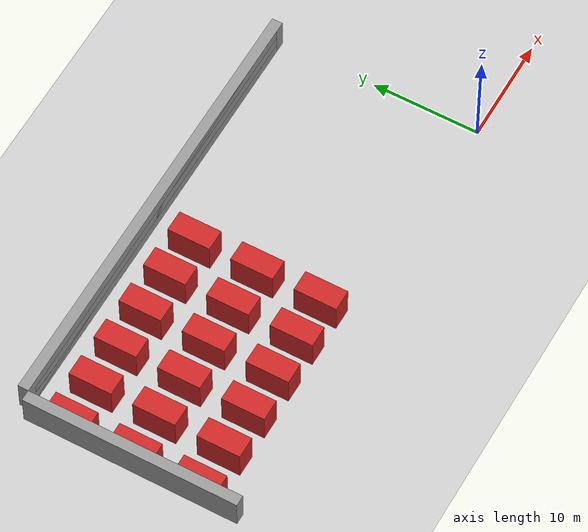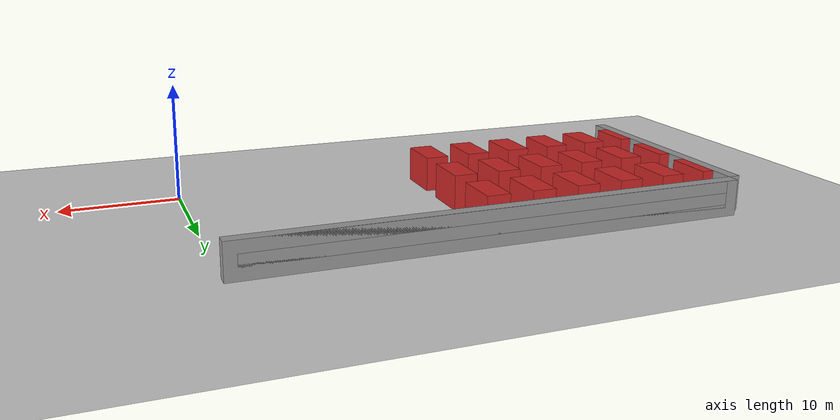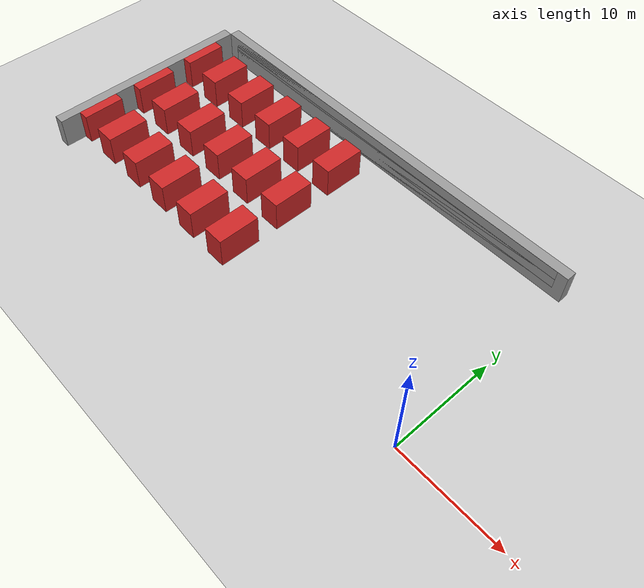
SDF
<sdf version="1.6">
 <world name="default">
  <model name="ground_plane">
   <static>1</static>
   <link name="link">
    <collision name="collision">
     <geometry><plane><normal>0 0 1</normal><size>100 100</size></plane></geometry>
     <surface><friction><ode><mu>100</mu><mu2>50</mu2></ode></friction></surface>
    </collision>
    <visual name="visual">
     <cast_shadows>0</cast_shadows>
     <geometry><plane><normal>0 0 1</normal><size>100 100</size></plane></geometry>
     <material>
      <script><uri>file://media/materials/scripts/gazebo.material</uri><name>Gazebo/Grey</name></script>
     </material>
    </visual>
   </link>
  </model>
  <model name="garage">
   <link name="link_0">
    <pose>0 10.5 -0 0 -0 0</pose>
    <inertial>
     <mass>1</mass>
     <inertia>
      <ixx>0.166667</ixx>
      <ixy>0</ixy>
      <ixz>0</ixz>
      <iyy>0.166667</iyy>
      <iyz>0</iyz>
      <izz>0.166667</izz>
     </inertia>
    </inertial>
    <gravity>0</gravity>
    <kinematic>1</kinematic>
    <visual name="ModelPreview_1::link_0::visual_1">
     <geometry><box><size>1 1 1</size></box></geometry>
     <material>
      <lighting>1</lighting>
      <script><uri>file://media/materials/scripts/gazebo.material</uri><name>Gazebo/Grey</name></script>
      <ambient>0.3 0.3 0.3 1</ambient>
      <diffuse>0.7 0.7 0.7 1</diffuse>
      <specular>0.01 0.01 0.01 1</specular>
      <emissive>0 0 0 1</emissive>
      <shader type="vertex"><normal_map>__default__</normal_map></shader>
     </material>
    </visual>
    <visual name="ModelPreview_1::link_0::visual_2">
     <geometry><box><size>40 1 1</size></box></geometry>
     <material>
      <lighting>1</lighting>
      <script><uri>file://media/materials/scripts/gazebo.material</uri><name>Gazebo/Grey</name></script>
      <ambient>0.3 0.3 0.3 1</ambient>
      <diffuse>0.7 0.7 0.7 1</diffuse>
      <specular>0.01 0.01 0.01 1</specular>
      <emissive>0 0 0 1</emissive>
      <shader type="vertex"><normal_map>__default__</normal_map></shader>
     </material>
    </visual>
    <visual name="visual">
     <geometry><box><size>42 1 3</size></box></geometry>
     <material>
      <lighting>1</lighting>
      <script><uri>file://media/materials/scripts/gazebo.material</uri><name>Gazebo/Grey</name></script>
      <ambient>0.3 0.3 0.3 1</ambient>
      <diffuse>0.7 0.7 0.7 1</diffuse>
      <specular>0.01 0.01 0.01 1</specular>
      <emissive>0 0 0 1</emissive>
      <shader type="vertex"><normal_map>__default__</normal_map></shader>
     </material>
    </visual>
    <visual name="ModelPreview_1::link_0::visual_3">
     <geometry><box><size>40 1 2.97</size></box></geometry>
     <material>
      <lighting>1</lighting>
      <script><uri>file://media/materials/scripts/gazebo.material</uri><name>Gazebo/Grey</name></script>
      <ambient>0.3 0.3 0.3 1</ambient>
      <diffuse>0.7 0.7 0.7 1</diffuse>
      <specular>0.01 0.01 0.01 1</specular>
      <emissive>0 0 0 1</emissive>
      <shader type="vertex"><normal_map>__default__</normal_map></shader>
     </material>
    </visual>
    <collision name="collision">
     <geometry><box><size>42 1 3</size></box></geometry>
     <surface>
      <friction>
       <ode><mu>1</mu><mu2>1</mu2><fdir1>0 0 0</fdir1><slip1>0</slip1><slip2>0</slip2></ode>
       <torsional>
        <coefficient>1</coefficient>
        <patch_radius>0</patch_radius>
        <surface_radius>0</surface_radius>
        <use_patch_radius>1</use_patch_radius>
        <ode><slip>0</slip></ode>
       </torsional>
      </friction>
      <bounce><restitution_coefficient>0</restitution_coefficient><threshold>1e+06</threshold></bounce>
      <contact>
       <collide_without_contact>0</collide_without_contact>
       <collide_without_contact_bitmask>1</collide_without_contact_bitmask>
       <collide_bitmask>1</collide_bitmask>
       <ode>
        <soft_cfm>0</soft_cfm>
        <soft_erp>0.2</soft_erp>
        <kp>1e+13</kp>
        <kd>1</kd>
        <max_vel>0.01</max_vel>
        <min_depth>0</min_depth>
       </ode>
       <bullet>
        <split_impulse>1</split_impulse>
        <split_impulse_penetration_threshold>-0.01</split_impulse_penetration_threshold>
        <soft_cfm>0</soft_cfm>
        <soft_erp>0.2</soft_erp>
        <kp>1e+13</kp>
        <kd>1</kd>
       </bullet>
      </contact>
     </surface>
    </collision>
   </link>
   <link name="link_1">
    <pose>-20.5 6 -0 0 -0 0</pose>
    <inertial>
     <mass>1</mass>
     <inertia>
      <ixx>0.166667</ixx>
      <ixy>0</ixy>
      <ixz>0</ixz>
      <iyy>0.166667</iyy>
      <iyz>0</iyz>
      <izz>0.166667</izz>
     </inertia>
    </inertial>
    <gravity>0</gravity>
    <kinematic>1</kinematic>
    <visual name="visual">
     <geometry><box><size>1 4 3</size></box></geometry>
     <material>
      <lighting>1</lighting>
      <script><uri>file://media/materials/scripts/gazebo.material</uri><name>Gazebo/Red</name></script>
      <ambient>0.3 0 0 0</ambient>
      <diffuse>0.7 0.7 0.7 1</diffuse>
      <specular>0.01 0.01 0.01 1</specular>
      <emissive>0 0 0 1</emissive>
      <shader type="vertex"><normal_map>__default__</normal_map></shader>
     </material>
    </visual>
    <collision name="collision">
     <geometry><box><size>1 4 3</size></box></geometry>
     <surface>
      <friction>
       <ode><mu>1</mu><mu2>1</mu2><fdir1>0 0 0</fdir1><slip1>0</slip1><slip2>0</slip2></ode>
       <torsional>
        <coefficient>1</coefficient>
        <patch_radius>0</patch_radius>
        <surface_radius>0</surface_radius>
        <use_patch_radius>1</use_patch_radius>
        <ode><slip>0</slip></ode>
       </torsional>
      </friction>
      <bounce><restitution_coefficient>0</restitution_coefficient><threshold>1e+06</threshold></bounce>
      <contact>
       <collide_without_contact>0</collide_without_contact>
       <collide_without_contact_bitmask>1</collide_without_contact_bitmask>
       <collide_bitmask>1</collide_bitmask>
       <ode>
        <soft_cfm>0</soft_cfm>
        <soft_erp>0.2</soft_erp>
        <kp>1e+13</kp>
        <kd>1</kd>
        <max_vel>0.01</max_vel>
        <min_depth>0</min_depth>
       </ode>
       <bullet>
        <split_impulse>1</split_impulse>
        <split_impulse_penetration_threshold>-0.01</split_impulse_penetration_threshold>
        <soft_cfm>0</soft_cfm>
        <soft_erp>0.2</soft_erp>
        <kp>1e+13</kp>
        <kd>1</kd>
       </bullet>
      </contact>
     </surface>
    </collision>
   </link>
   <link name="link_1_clone">
    <pose>-20.5 0 0 0 -0 0</pose>
    <inertial>
     <mass>1</mass>
     <inertia>
      <ixx>0.166667</ixx>
      <ixy>0</ixy>
      <ixz>0</ixz>
      <iyy>0.166667</iyy>
      <iyz>0</iyz>
      <izz>0.166667</izz>
     </inertia>
    </inertial>
    <kinematic>1</kinematic>
    <gravity>0</gravity>
    <visual name="visual">
     <geometry><box><size>1 4 3</size></box></geometry>
     <material>
      <lighting>1</lighting>
      <script><uri>file://media/materials/scripts/gazebo.material</uri><name>Gazebo/Red</name></script>
      <ambient>0.3 0 0 0</ambient>
      <diffuse>0.7 0.7 0.7 1</diffuse>
      <specular>0.01 0.01 0.01 1</specular>
      <emissive>0 0 0 1</emissive>
      <shader type="vertex"><normal_map>__default__</normal_map></shader>
     </material>
    </visual>
    <collision name="collision">
     <geometry><box><size>1 4 3</size></box></geometry>
     <surface>
      <friction>
       <ode><mu>1</mu><mu2>1</mu2><fdir1>0 0 0</fdir1><slip1>0</slip1><slip2>0</slip2></ode>
       <torsional>
        <coefficient>1</coefficient>
        <patch_radius>0</patch_radius>
        <surface_radius>0</surface_radius>
        <use_patch_radius>1</use_patch_radius>
        <ode><slip>0</slip></ode>
       </torsional>
      </friction>
      <bounce><restitution_coefficient>0</restitution_coefficient><threshold>1e+06</threshold></bounce>
      <contact>
       <collide_without_contact>0</collide_without_contact>
       <collide_without_contact_bitmask>1</collide_without_contact_bitmask>
       <collide_bitmask>1</collide_bitmask>
       <ode>
        <soft_cfm>0</soft_cfm>
        <soft_erp>0.2</soft_erp>
        <kp>1e+13</kp>
        <kd>1</kd>
        <max_vel>0.01</max_vel>
        <min_depth>0</min_depth>
       </ode>
       <bullet>
        <split_impulse>1</split_impulse>
        <split_impulse_penetration_threshold>-0.01</split_impulse_penetration_threshold>
        <soft_cfm>0</soft_cfm>
        <soft_erp>0.2</soft_erp>
        <kp>1e+13</kp>
        <kd>1</kd>
       </bullet>
      </contact>
     </surface>
    </collision>
   </link>
   <link name="link_1_clone_0">
    <pose>-20.5 -6 0 0 -0 0</pose>
    <inertial>
     <mass>1</mass>
     <inertia>
      <ixx>0.166667</ixx>
      <ixy>0</ixy>
      <ixz>0</ixz>
      <iyy>0.166667</iyy>
      <iyz>0</iyz>
      <izz>0.166667</izz>
     </inertia>
    </inertial>
    <kinematic>1</kinematic>
    <gravity>0</gravity>
    <visual name="visual">
     <geometry><box><size>1 4 3</size></box></geometry>
     <material>
      <lighting>1</lighting>
      <script><uri>file://media/materials/scripts/gazebo.material</uri><name>Gazebo/Red</name></script>
      <ambient>0.3 0 0 0</ambient>
      <diffuse>0.7 0.7 0.7 1</diffuse>
      <specular>0.01 0.01 0.01 1</specular>
      <emissive>0 0 0 1</emissive>
      <shader type="vertex"><normal_map>__default__</normal_map></shader>
     </material>
    </visual>
    <collision name="collision">
     <geometry><box><size>1 4 3</size></box></geometry>
     <surface>
      <friction>
       <ode><mu>1</mu><mu2>1</mu2><fdir1>0 0 0</fdir1><slip1>0</slip1><slip2>0</slip2></ode>
       <torsional>
        <coefficient>1</coefficient>
        <patch_radius>0</patch_radius>
        <surface_radius>0</surface_radius>
        <use_patch_radius>1</use_patch_radius>
        <ode><slip>0</slip></ode>
       </torsional>
      </friction>
      <bounce><restitution_coefficient>0</restitution_coefficient><threshold>1e+06</threshold></bounce>
      <contact>
       <collide_without_contact>0</collide_without_contact>
       <collide_without_contact_bitmask>1</collide_without_contact_bitmask>
       <collide_bitmask>1</collide_bitmask>
       <ode>
        <soft_cfm>0</soft_cfm>
        <soft_erp>0.2</soft_erp>
        <kp>1e+13</kp>
        <kd>1</kd>
        <max_vel>0.01</max_vel>
        <min_depth>0</min_depth>
       </ode>
       <bullet>
        <split_impulse>1</split_impulse>
        <split_impulse_penetration_threshold>-0.01</split_impulse_penetration_threshold>
        <soft_cfm>0</soft_cfm>
        <soft_erp>0.2</soft_erp>
        <kp>1e+13</kp>
        <kd>1</kd>
       </bullet>
      </contact>
     </surface>
    </collision>
   </link>
   <link name="link_1_clone_1">
    <pose>-17 6 -0 0 -0 0</pose>
    <inertial>
     <mass>1</mass>
     <inertia>
      <ixx>0.166667</ixx>
      <ixy>0</ixy>
      <ixz>0</ixz>
      <iyy>0.166667</iyy>
      <iyz>0</iyz>
      <izz>0.166667</izz>
     </inertia>
    </inertial>
    <kinematic>1</kinematic>
    <gravity>0</gravity>
    <visual name="visual">
     <geometry><box><size>2 4 3</size></box></geometry>
     <material>
      <lighting>1</lighting>
      <script><uri>file://media/materials/scripts/gazebo.material</uri><name>Gazebo/Red</name></script>
      <ambient>0 0.3 0 1</ambient>
      <diffuse>0.7 0.7 0.7 1</diffuse>
      <specular>0.01 0.01 0.01 1</specular>
      <emissive>0 0 0 1</emissive>
      <shader type="vertex"><normal_map>__default__</normal_map></shader>
     </material>
    </visual>
    <collision name="collision">
     <geometry><box><size>2 4 3</size></box></geometry>
     <surface>
      <friction>
       <ode><mu>1</mu><mu2>1</mu2><fdir1>0 0 0</fdir1><slip1>0</slip1><slip2>0</slip2></ode>
       <torsional>
        <coefficient>1</coefficient>
        <patch_radius>0</patch_radius>
        <surface_radius>0</surface_radius>
        <use_patch_radius>1</use_patch_radius>
        <ode><slip>0</slip></ode>
       </torsional>
      </friction>
      <bounce><restitution_coefficient>0</restitution_coefficient><threshold>1e+06</threshold></bounce>
      <contact>
       <collide_without_contact>0</collide_without_contact>
       <collide_without_contact_bitmask>1</collide_without_contact_bitmask>
       <collide_bitmask>1</collide_bitmask>
       <ode>
        <soft_cfm>0</soft_cfm>
        <soft_erp>0.2</soft_erp>
        <kp>1e+13</kp>
        <kd>1</kd>
        <max_vel>0.01</max_vel>
        <min_depth>0</min_depth>
       </ode>
       <bullet>
        <split_impulse>1</split_impulse>
        <split_impulse_penetration_threshold>-0.01</split_impulse_penetration_threshold>
        <soft_cfm>0</soft_cfm>
        <soft_erp>0.2</soft_erp>
        <kp>1e+13</kp>
        <kd>1</kd>
       </bullet>
      </contact>
     </surface>
    </collision>
   </link>
   <link name="link_1_clone_1_clone">
    <pose>-17 0 -0 0 -0 0</pose>
    <inertial>
     <mass>1</mass>
     <inertia>
      <ixx>0.166667</ixx>
      <ixy>0</ixy>
      <ixz>0</ixz>
      <iyy>0.166667</iyy>
      <iyz>0</iyz>
      <izz>0.166667</izz>
     </inertia>
    </inertial>
    <kinematic>1</kinematic>
    <gravity>0</gravity>
    <visual name="visual">
     <geometry><box><size>2 4 3</size></box></geometry>
     <material>
      <lighting>1</lighting>
      <script><uri>file://media/materials/scripts/gazebo.material</uri><name>Gazebo/Red</name></script>
      <ambient>0 0.3 0 1</ambient>
      <diffuse>0.7 0.7 0.7 1</diffuse>
      <specular>0.01 0.01 0.01 1</specular>
      <emissive>0 0 0 1</emissive>
      <shader type="vertex"><normal_map>__default__</normal_map></shader>
     </material>
    </visual>
    <collision name="collision">
     <geometry><box><size>2 4 3</size></box></geometry>
     <surface>
      <friction>
       <ode><mu>1</mu><mu2>1</mu2><fdir1>0 0 0</fdir1><slip1>0</slip1><slip2>0</slip2></ode>
       <torsional>
        <coefficient>1</coefficient>
        <patch_radius>0</patch_radius>
        <surface_radius>0</surface_radius>
        <use_patch_radius>1</use_patch_radius>
        <ode><slip>0</slip></ode>
       </torsional>
      </friction>
      <bounce><restitution_coefficient>0</restitution_coefficient><threshold>1e+06</threshold></bounce>
      <contact>
       <collide_without_contact>0</collide_without_contact>
       <collide_without_contact_bitmask>1</collide_without_contact_bitmask>
       <collide_bitmask>1</collide_bitmask>
       <ode>
        <soft_cfm>0</soft_cfm>
        <soft_erp>0.2</soft_erp>
        <kp>1e+13</kp>
        <kd>1</kd>
        <max_vel>0.01</max_vel>
        <min_depth>0</min_depth>
       </ode>
       <bullet>
        <split_impulse>1</split_impulse>
        <split_impulse_penetration_threshold>-0.01</split_impulse_penetration_threshold>
        <soft_cfm>0</soft_cfm>
        <soft_erp>0.2</soft_erp>
        <kp>1e+13</kp>
        <kd>1</kd>
       </bullet>
      </contact>
     </surface>
    </collision>
   </link>
   <link name="link_1_clone_1_clone_0">
    <pose>-17 -6 -0 0 -0 0</pose>
    <inertial>
     <mass>1</mass>
     <inertia>
      <ixx>0.166667</ixx>
      <ixy>0</ixy>
      <ixz>0</ixz>
      <iyy>0.166667</iyy>
      <iyz>0</iyz>
      <izz>0.166667</izz>
     </inertia>
    </inertial>
    <kinematic>1</kinematic>
    <visual name="visual">
     <geometry><box><size>2 4 3</size></box></geometry>
     <material>
      <lighting>1</lighting>
      <script><uri>file://media/materials/scripts/gazebo.material</uri><name>Gazebo/Red</name></script>
      <ambient>0 0.3 0 1</ambient>
      <diffuse>0.7 0.7 0.7 1</diffuse>
      <specular>0.01 0.01 0.01 1</specular>
      <emissive>0 0 0 1</emissive>
      <shader type="vertex"><normal_map>__default__</normal_map></shader>
     </material>
    </visual>
    <collision name="collision">
     <geometry><box><size>2 4 3</size></box></geometry>
     <surface>
      <friction>
       <ode><mu>1</mu><mu2>1</mu2><fdir1>0 0 0</fdir1><slip1>0</slip1><slip2>0</slip2></ode>
       <torsional>
        <coefficient>1</coefficient>
        <patch_radius>0</patch_radius>
        <surface_radius>0</surface_radius>
        <use_patch_radius>1</use_patch_radius>
        <ode><slip>0</slip></ode>
       </torsional>
      </friction>
      <bounce><restitution_coefficient>0</restitution_coefficient><threshold>1e+06</threshold></bounce>
      <contact>
       <collide_without_contact>0</collide_without_contact>
       <collide_without_contact_bitmask>1</collide_without_contact_bitmask>
       <collide_bitmask>1</collide_bitmask>
       <ode>
        <soft_cfm>0</soft_cfm>
        <soft_erp>0.2</soft_erp>
        <kp>1e+13</kp>
        <kd>1</kd>
        <max_vel>0.01</max_vel>
        <min_depth>0</min_depth>
       </ode>
       <bullet>
        <split_impulse>1</split_impulse>
        <split_impulse_penetration_threshold>-0.01</split_impulse_penetration_threshold>
        <soft_cfm>0</soft_cfm>
        <soft_erp>0.2</soft_erp>
        <kp>1e+13</kp>
        <kd>1</kd>
       </bullet>
      </contact>
     </surface>
    </collision>
   </link>
   <link name="link_1_clone_1_clone_1">
    <pose>-13 -6 -0 0 -0 0</pose>
    <inertial>
     <mass>1</mass>
     <inertia>
      <ixx>0.166667</ixx>
      <ixy>0</ixy>
      <ixz>0</ixz>
      <iyy>0.166667</iyy>
      <iyz>0</iyz>
      <izz>0.166667</izz>
     </inertia>
    </inertial>
    <kinematic>1</kinematic>
    <gravity>0</gravity>
    <visual name="visual">
     <geometry><box><size>2 4 3</size></box></geometry>
     <material>
      <lighting>1</lighting>
      <script><uri>file://media/materials/scripts/gazebo.material</uri><name>Gazebo/Red</name></script>
      <ambient>0 0 0.3 1</ambient>
      <diffuse>0.7 0.7 0.7 1</diffuse>
      <specular>0.01 0.01 0.01 1</specular>
      <emissive>0 0 0 1</emissive>
      <shader type="vertex"><normal_map>__default__</normal_map></shader>
     </material>
    </visual>
    <collision name="collision">
     <geometry><box><size>2 4 3</size></box></geometry>
     <surface>
      <friction>
       <ode><mu>1</mu><mu2>1</mu2><fdir1>0 0 0</fdir1><slip1>0</slip1><slip2>0</slip2></ode>
       <torsional>
        <coefficient>1</coefficient>
        <patch_radius>0</patch_radius>
        <surface_radius>0</surface_radius>
        <use_patch_radius>1</use_patch_radius>
        <ode><slip>0</slip></ode>
       </torsional>
      </friction>
      <bounce><restitution_coefficient>0</restitution_coefficient><threshold>1e+06</threshold></bounce>
      <contact>
       <collide_without_contact>0</collide_without_contact>
       <collide_without_contact_bitmask>1</collide_without_contact_bitmask>
       <collide_bitmask>1</collide_bitmask>
       <ode>
        <soft_cfm>0</soft_cfm>
        <soft_erp>0.2</soft_erp>
        <kp>1e+13</kp>
        <kd>1</kd>
        <max_vel>0.01</max_vel>
        <min_depth>0</min_depth>
       </ode>
       <bullet>
        <split_impulse>1</split_impulse>
        <split_impulse_penetration_threshold>-0.01</split_impulse_penetration_threshold>
        <soft_cfm>0</soft_cfm>
        <soft_erp>0.2</soft_erp>
        <kp>1e+13</kp>
        <kd>1</kd>
       </bullet>
      </contact>
     </surface>
    </collision>
   </link>
   <link name="link_1_clone_1_clone_1_clone">
    <pose>-13 0 0 0 -0 0</pose>
    <inertial>
     <mass>1</mass>
     <inertia>
      <ixx>0.166667</ixx>
      <ixy>0</ixy>
      <ixz>0</ixz>
      <iyy>0.166667</iyy>
      <iyz>0</iyz>
      <izz>0.166667</izz>
     </inertia>
    </inertial>
    <kinematic>1</kinematic>
    <gravity>0</gravity>
    <visual name="visual">
     <geometry><box><size>2 4 3</size></box></geometry>
     <material>
      <lighting>1</lighting>
      <script><uri>file://media/materials/scripts/gazebo.material</uri><name>Gazebo/Red</name></script>
      <ambient>0 0 0.3 1</ambient>
      <diffuse>0.7 0.7 0.7 1</diffuse>
      <specular>0.01 0.01 0.01 1</specular>
      <emissive>0 0 0 1</emissive>
      <shader type="vertex"><normal_map>__default__</normal_map></shader>
     </material>
    </visual>
    <collision name="collision">
     <geometry><box><size>2 4 3</size></box></geometry>
     <surface>
      <friction>
       <ode><mu>1</mu><mu2>1</mu2><fdir1>0 0 0</fdir1><slip1>0</slip1><slip2>0</slip2></ode>
       <torsional>
        <coefficient>1</coefficient>
        <patch_radius>0</patch_radius>
        <surface_radius>0</surface_radius>
        <use_patch_radius>1</use_patch_radius>
        <ode><slip>0</slip></ode>
       </torsional>
      </friction>
      <bounce><restitution_coefficient>0</restitution_coefficient><threshold>1e+06</threshold></bounce>
      <contact>
       <collide_without_contact>0</collide_without_contact>
       <collide_without_contact_bitmask>1</collide_without_contact_bitmask>
       <collide_bitmask>1</collide_bitmask>
       <ode>
        <soft_cfm>0</soft_cfm>
        <soft_erp>0.2</soft_erp>
        <kp>1e+13</kp>
        <kd>1</kd>
        <max_vel>0.01</max_vel>
        <min_depth>0</min_depth>
       </ode>
       <bullet>
        <split_impulse>1</split_impulse>
        <split_impulse_penetration_threshold>-0.01</split_impulse_penetration_threshold>
        <soft_cfm>0</soft_cfm>
        <soft_erp>0.2</soft_erp>
        <kp>1e+13</kp>
        <kd>1</kd>
       </bullet>
      </contact>
     </surface>
    </collision>
   </link>
   <link name="link_1_clone_1_clone_1_clone_0">
    <pose>-13 6 0 0 -0 0</pose>
    <inertial>
     <mass>1</mass>
     <inertia>
      <ixx>0.166667</ixx>
      <ixy>0</ixy>
      <ixz>0</ixz>
      <iyy>0.166667</iyy>
      <iyz>0</iyz>
      <izz>0.166667</izz>
     </inertia>
    </inertial>
    <kinematic>1</kinematic>
    <gravity>0</gravity>
    <visual name="visual">
     <geometry><box><size>2 4 3</size></box></geometry>
     <material>
      <lighting>1</lighting>
      <script><uri>file://media/materials/scripts/gazebo.material</uri><name>Gazebo/Red</name></script>
      <ambient>0 0 0.3 1</ambient>
      <diffuse>0.7 0.7 0.7 1</diffuse>
      <specular>0.01 0.01 0.01 1</specular>
      <emissive>0 0 0 1</emissive>
      <shader type="vertex"><normal_map>__default__</normal_map></shader>
     </material>
    </visual>
    <collision name="collision">
     <geometry><box><size>2 4 3</size></box></geometry>
     <surface>
      <friction>
       <ode><mu>1</mu><mu2>1</mu2><fdir1>0 0 0</fdir1><slip1>0</slip1><slip2>0</slip2></ode>
       <torsional>
        <coefficient>1</coefficient>
        <patch_radius>0</patch_radius>
        <surface_radius>0</surface_radius>
        <use_patch_radius>1</use_patch_radius>
        <ode><slip>0</slip></ode>
       </torsional>
      </friction>
      <bounce><restitution_coefficient>0</restitution_coefficient><threshold>1e+06</threshold></bounce>
      <contact>
       <collide_without_contact>0</collide_without_contact>
       <collide_without_contact_bitmask>1</collide_without_contact_bitmask>
       <collide_bitmask>1</collide_bitmask>
       <ode>
        <soft_cfm>0</soft_cfm>
        <soft_erp>0.2</soft_erp>
        <kp>1e+13</kp>
        <kd>1</kd>
        <max_vel>0.01</max_vel>
        <min_depth>0</min_depth>
       </ode>
       <bullet>
        <split_impulse>1</split_impulse>
        <split_impulse_penetration_threshold>-0.01</split_impulse_penetration_threshold>
        <soft_cfm>0</soft_cfm>
        <soft_erp>0.2</soft_erp>
        <kp>1e+13</kp>
        <kd>1</kd>
       </bullet>
      </contact>
     </surface>
    </collision>
   </link>
   <link name="link_1_clone_1_clone_1_clone_0_clone">
    <pose>-9 6 -0 0 -0 0</pose>
    <inertial>
     <mass>1</mass>
     <inertia>
      <ixx>0.166667</ixx>
      <ixy>0</ixy>
      <ixz>0</ixz>
      <iyy>0.166667</iyy>
      <iyz>0</iyz>
      <izz>0.166667</izz>
     </inertia>
    </inertial>
    <kinematic>1</kinematic>
    <visual name="visual">
     <geometry><box><size>2 4 3</size></box></geometry>
     <material>
      <lighting>1</lighting>
      <script><uri>file://media/materials/scripts/gazebo.material</uri><name>Gazebo/Red</name></script>
      <ambient>0 0 0.1 0.9</ambient>
      <diffuse>0.7 0.7 0.7 1</diffuse>
      <specular>0.01 0.01 0.01 1</specular>
      <emissive>0 0 0 1</emissive>
      <shader type="vertex"><normal_map>__default__</normal_map></shader>
     </material>
    </visual>
    <collision name="collision">
     <geometry><box><size>2 4 3</size></box></geometry>
     <surface>
      <friction>
       <ode><mu>1</mu><mu2>1</mu2><fdir1>0 0 0</fdir1><slip1>0</slip1><slip2>0</slip2></ode>
       <torsional>
        <coefficient>1</coefficient>
        <patch_radius>0</patch_radius>
        <surface_radius>0</surface_radius>
        <use_patch_radius>1</use_patch_radius>
        <ode><slip>0</slip></ode>
       </torsional>
      </friction>
      <bounce><restitution_coefficient>0</restitution_coefficient><threshold>1e+06</threshold></bounce>
      <contact>
       <collide_without_contact>0</collide_without_contact>
       <collide_without_contact_bitmask>1</collide_without_contact_bitmask>
       <collide_bitmask>1</collide_bitmask>
       <ode>
        <soft_cfm>0</soft_cfm>
        <soft_erp>0.2</soft_erp>
        <kp>1e+13</kp>
        <kd>1</kd>
        <max_vel>0.01</max_vel>
        <min_depth>0</min_depth>
       </ode>
       <bullet>
        <split_impulse>1</split_impulse>
        <split_impulse_penetration_threshold>-0.01</split_impulse_penetration_threshold>
        <soft_cfm>0</soft_cfm>
        <soft_erp>0.2</soft_erp>
        <kp>1e+13</kp>
        <kd>1</kd>
       </bullet>
      </contact>
     </surface>
    </collision>
   </link>
   <link name="link_1_clone_1_clone_1_clone_0_clone_clone">
    <pose>-9 0 0 0 -0 0</pose>
    <inertial>
     <mass>1</mass>
     <inertia>
      <ixx>0.166667</ixx>
      <ixy>0</ixy>
      <ixz>0</ixz>
      <iyy>0.166667</iyy>
      <iyz>0</iyz>
      <izz>0.166667</izz>
     </inertia>
    </inertial>
    <kinematic>1</kinematic>
    <gravity>0</gravity>
    <visual name="visual">
     <geometry><box><size>2 4 3</size></box></geometry>
     <material>
      <lighting>1</lighting>
      <script><uri>file://media/materials/scripts/gazebo.material</uri><name>Gazebo/Red</name></script>
      <ambient>0 0 0.1 0.9</ambient>
      <diffuse>0.7 0.7 0.7 1</diffuse>
      <specular>0.01 0.01 0.01 1</specular>
      <emissive>0 0 0 1</emissive>
      <shader type="vertex"><normal_map>__default__</normal_map></shader>
     </material>
    </visual>
    <collision name="collision">
     <geometry><box><size>2 4 3</size></box></geometry>
     <surface>
      <friction>
       <ode><mu>1</mu><mu2>1</mu2><fdir1>0 0 0</fdir1><slip1>0</slip1><slip2>0</slip2></ode>
       <torsional>
        <coefficient>1</coefficient>
        <patch_radius>0</patch_radius>
        <surface_radius>0</surface_radius>
        <use_patch_radius>1</use_patch_radius>
        <ode><slip>0</slip></ode>
       </torsional>
      </friction>
      <bounce><restitution_coefficient>0</restitution_coefficient><threshold>1e+06</threshold></bounce>
      <contact>
       <collide_without_contact>0</collide_without_contact>
       <collide_without_contact_bitmask>1</collide_without_contact_bitmask>
       <collide_bitmask>1</collide_bitmask>
       <ode>
        <soft_cfm>0</soft_cfm>
        <soft_erp>0.2</soft_erp>
        <kp>1e+13</kp>
        <kd>1</kd>
        <max_vel>0.01</max_vel>
        <min_depth>0</min_depth>
       </ode>
       <bullet>
        <split_impulse>1</split_impulse>
        <split_impulse_penetration_threshold>-0.01</split_impulse_penetration_threshold>
        <soft_cfm>0</soft_cfm>
        <soft_erp>0.2</soft_erp>
        <kp>1e+13</kp>
        <kd>1</kd>
       </bullet>
      </contact>
     </surface>
    </collision>
   </link>
   <link name="link_1_clone_1_clone_1_clone_0_clone_clone_0">
    <pose>-9 -6 -0 0 -0 0</pose>
    <inertial>
     <mass>1</mass>
     <inertia>
      <ixx>0.166667</ixx>
      <ixy>0</ixy>
      <ixz>0</ixz>
      <iyy>0.166667</iyy>
      <iyz>0</iyz>
      <izz>0.166667</izz>
     </inertia>
    </inertial>
    <kinematic>1</kinematic>
    <visual name="visual">
     <geometry><box><size>2 4 3</size></box></geometry>
     <material>
      <lighting>1</lighting>
      <script><uri>file://media/materials/scripts/gazebo.material</uri><name>Gazebo/Red</name></script>
      <ambient>0 0 0.1 0.9</ambient>
      <diffuse>0.7 0.7 0.7 1</diffuse>
      <specular>0.01 0.01 0.01 1</specular>
      <emissive>0 0 0 1</emissive>
      <shader type="vertex"><normal_map>__default__</normal_map></shader>
     </material>
    </visual>
    <collision name="collision">
     <geometry><box><size>2 4 3</size></box></geometry>
     <surface>
      <friction>
       <ode><mu>1</mu><mu2>1</mu2><fdir1>0 0 0</fdir1><slip1>0</slip1><slip2>0</slip2></ode>
       <torsional>
        <coefficient>1</coefficient>
        <patch_radius>0</patch_radius>
        <surface_radius>0</surface_radius>
        <use_patch_radius>1</use_patch_radius>
        <ode><slip>0</slip></ode>
       </torsional>
      </friction>
      <bounce><restitution_coefficient>0</restitution_coefficient><threshold>1e+06</threshold></bounce>
      <contact>
       <collide_without_contact>0</collide_without_contact>
       <collide_without_contact_bitmask>1</collide_without_contact_bitmask>
       <collide_bitmask>1</collide_bitmask>
       <ode>
        <soft_cfm>0</soft_cfm>
        <soft_erp>0.2</soft_erp>
        <kp>1e+13</kp>
        <kd>1</kd>
        <max_vel>0.01</max_vel>
        <min_depth>0</min_depth>
       </ode>
       <bullet>
        <split_impulse>1</split_impulse>
        <split_impulse_penetration_threshold>-0.01</split_impulse_penetration_threshold>
        <soft_cfm>0</soft_cfm>
        <soft_erp>0.2</soft_erp>
        <kp>1e+13</kp>
        <kd>1</kd>
       </bullet>
      </contact>
     </surface>
    </collision>
   </link>
   <link name="link_1_clone_1_clone_1_clone_0_clone_clone_1">
    <pose>-5 -6 0 0 -0 0</pose>
    <inertial>
     <mass>1</mass>
     <inertia>
      <ixx>0.166667</ixx>
      <ixy>0</ixy>
      <ixz>0</ixz>
      <iyy>0.166667</iyy>
      <iyz>0</iyz>
      <izz>0.166667</izz>
     </inertia>
    </inertial>
    <kinematic>1</kinematic>
    <gravity>0</gravity>
    <visual name="visual">
     <geometry><box><size>2 4 3</size></box></geometry>
     <material>
      <lighting>1</lighting>
      <script><uri>file://media/materials/scripts/gazebo.material</uri><name>Gazebo/Red</name></script>
      <ambient>0.9 0 0.1 0.5</ambient>
      <diffuse>0.7 0.7 0.7 1</diffuse>
      <specular>0.01 0.01 0.01 1</specular>
      <emissive>0 0 0 1</emissive>
      <shader type="vertex"><normal_map>__default__</normal_map></shader>
     </material>
    </visual>
    <collision name="collision">
     <geometry><box><size>2 4 3</size></box></geometry>
     <surface>
      <friction>
       <ode><mu>1</mu><mu2>1</mu2><fdir1>0 0 0</fdir1><slip1>0</slip1><slip2>0</slip2></ode>
       <torsional>
        <coefficient>1</coefficient>
        <patch_radius>0</patch_radius>
        <surface_radius>0</surface_radius>
        <use_patch_radius>1</use_patch_radius>
        <ode><slip>0</slip></ode>
       </torsional>
      </friction>
      <bounce><restitution_coefficient>0</restitution_coefficient><threshold>1e+06</threshold></bounce>
      <contact>
       <collide_without_contact>0</collide_without_contact>
       <collide_without_contact_bitmask>1</collide_without_contact_bitmask>
       <collide_bitmask>1</collide_bitmask>
       <ode>
        <soft_cfm>0</soft_cfm>
        <soft_erp>0.2</soft_erp>
        <kp>1e+13</kp>
        <kd>1</kd>
        <max_vel>0.01</max_vel>
        <min_depth>0</min_depth>
       </ode>
       <bullet>
        <split_impulse>1</split_impulse>
        <split_impulse_penetration_threshold>-0.01</split_impulse_penetration_threshold>
        <soft_cfm>0</soft_cfm>
        <soft_erp>0.2</soft_erp>
        <kp>1e+13</kp>
        <kd>1</kd>
       </bullet>
      </contact>
     </surface>
    </collision>
   </link>
   <link name="link_1_clone_1_clone_1_clone_0_clone_clone_1_clone">
    <pose>-5 0 -0 0 -0 0</pose>
    <inertial>
     <mass>1</mass>
     <inertia>
      <ixx>0.166667</ixx>
      <ixy>0</ixy>
      <ixz>0</ixz>
      <iyy>0.166667</iyy>
      <iyz>0</iyz>
      <izz>0.166667</izz>
     </inertia>
    </inertial>
    <kinematic>1</kinematic>
    <visual name="visual">
     <geometry><box><size>2 4 3</size></box></geometry>
     <material>
      <lighting>1</lighting>
      <script><uri>file://media/materials/scripts/gazebo.material</uri><name>Gazebo/Red</name></script>
      <ambient>0.9 0 0.1 0.5</ambient>
      <diffuse>0.7 0.7 0.7 1</diffuse>
      <specular>0.01 0.01 0.01 1</specular>
      <emissive>0 0 0 1</emissive>
      <shader type="vertex"><normal_map>__default__</normal_map></shader>
     </material>
    </visual>
    <collision name="collision">
     <geometry><box><size>2 4 3</size></box></geometry>
     <surface>
      <friction>
       <ode><mu>1</mu><mu2>1</mu2><fdir1>0 0 0</fdir1><slip1>0</slip1><slip2>0</slip2></ode>
       <torsional>
        <coefficient>1</coefficient>
        <patch_radius>0</patch_radius>
        <surface_radius>0</surface_radius>
        <use_patch_radius>1</use_patch_radius>
        <ode><slip>0</slip></ode>
       </torsional>
      </friction>
      <bounce><restitution_coefficient>0</restitution_coefficient><threshold>1e+06</threshold></bounce>
      <contact>
       <collide_without_contact>0</collide_without_contact>
       <collide_without_contact_bitmask>1</collide_without_contact_bitmask>
       <collide_bitmask>1</collide_bitmask>
       <ode>
        <soft_cfm>0</soft_cfm>
        <soft_erp>0.2</soft_erp>
        <kp>1e+13</kp>
        <kd>1</kd>
        <max_vel>0.01</max_vel>
        <min_depth>0</min_depth>
       </ode>
       <bullet>
        <split_impulse>1</split_impulse>
        <split_impulse_penetration_threshold>-0.01</split_impulse_penetration_threshold>
        <soft_cfm>0</soft_cfm>
        <soft_erp>0.2</soft_erp>
        <kp>1e+13</kp>
        <kd>1</kd>
       </bullet>
      </contact>
     </surface>
    </collision>
   </link>
   <link name="link_1_clone_1_clone_1_clone_0_clone_clone_1_clone_0">
    <pose>-5 6 0 0 -0 0</pose>
    <inertial>
     <mass>1</mass>
     <inertia>
      <ixx>0.166667</ixx>
      <ixy>0</ixy>
      <ixz>0</ixz>
      <iyy>0.166667</iyy>
      <iyz>0</iyz>
      <izz>0.166667</izz>
     </inertia>
    </inertial>
    <kinematic>1</kinematic>
    <visual name="visual">
     <geometry><box><size>2 4 3</size></box></geometry>
     <material>
      <lighting>1</lighting>
      <script><uri>file://media/materials/scripts/gazebo.material</uri><name>Gazebo/Red</name></script>
      <ambient>0.9 0 0.1 0.5</ambient>
      <diffuse>0.7 0.7 0.7 1</diffuse>
      <specular>0.01 0.01 0.01 1</specular>
      <emissive>0 0 0 1</emissive>
      <shader type="vertex"><normal_map>__default__</normal_map></shader>
     </material>
    </visual>
    <collision name="collision">
     <geometry><box><size>2 4 3</size></box></geometry>
     <surface>
      <friction>
       <ode><mu>1</mu><mu2>1</mu2><fdir1>0 0 0</fdir1><slip1>0</slip1><slip2>0</slip2></ode>
       <torsional>
        <coefficient>1</coefficient>
        <patch_radius>0</patch_radius>
        <surface_radius>0</surface_radius>
        <use_patch_radius>1</use_patch_radius>
        <ode><slip>0</slip></ode>
       </torsional>
      </friction>
      <bounce><restitution_coefficient>0</restitution_coefficient><threshold>1e+06</threshold></bounce>
      <contact>
       <collide_without_contact>0</collide_without_contact>
       <collide_without_contact_bitmask>1</collide_without_contact_bitmask>
       <collide_bitmask>1</collide_bitmask>
       <ode>
        <soft_cfm>0</soft_cfm>
        <soft_erp>0.2</soft_erp>
        <kp>1e+13</kp>
        <kd>1</kd>
        <max_vel>0.01</max_vel>
        <min_depth>0</min_depth>
       </ode>
       <bullet>
        <split_impulse>1</split_impulse>
        <split_impulse_penetration_threshold>-0.01</split_impulse_penetration_threshold>
        <soft_cfm>0</soft_cfm>
        <soft_erp>0.2</soft_erp>
        <kp>1e+13</kp>
        <kd>1</kd>
       </bullet>
      </contact>
     </surface>
    </collision>
   </link>
   <link name="link_1_clone_1_clone_1_clone_0_clone_clone_1_clone_1">
    <pose>-1 6 0 0 -0 0</pose>
    <inertial>
     <mass>1</mass>
     <inertia>
      <ixx>0.166667</ixx>
      <ixy>0</ixy>
      <ixz>0</ixz>
      <iyy>0.166667</iyy>
      <iyz>0</iyz>
      <izz>0.166667</izz>
     </inertia>
    </inertial>
    <kinematic>1</kinematic>
    <gravity>0</gravity>
    <visual name="visual">
     <geometry><box><size>2 4 3</size></box></geometry>
     <material>
      <lighting>1</lighting>
      <script><uri>file://media/materials/scripts/gazebo.material</uri><name>Gazebo/Red</name></script>
      <ambient>0.2 0.8 0.8 0.5</ambient>
      <diffuse>0.7 0.7 0.7 1</diffuse>
      <specular>0.01 0.01 0.01 1</specular>
      <emissive>0 0 0 1</emissive>
      <shader type="vertex"><normal_map>__default__</normal_map></shader>
     </material>
    </visual>
    <collision name="collision">
     <geometry><box><size>2 4 3</size></box></geometry>
     <surface>
      <friction>
       <ode><mu>1</mu><mu2>1</mu2><fdir1>0 0 0</fdir1><slip1>0</slip1><slip2>0</slip2></ode>
       <torsional>
        <coefficient>1</coefficient>
        <patch_radius>0</patch_radius>
        <surface_radius>0</surface_radius>
        <use_patch_radius>1</use_patch_radius>
        <ode><slip>0</slip></ode>
       </torsional>
      </friction>
      <bounce><restitution_coefficient>0</restitution_coefficient><threshold>1e+06</threshold></bounce>
      <contact>
       <collide_without_contact>0</collide_without_contact>
       <collide_without_contact_bitmask>1</collide_without_contact_bitmask>
       <collide_bitmask>1</collide_bitmask>
       <ode>
        <soft_cfm>0</soft_cfm>
        <soft_erp>0.2</soft_erp>
        <kp>1e+13</kp>
        <kd>1</kd>
        <max_vel>0.01</max_vel>
        <min_depth>0</min_depth>
       </ode>
       <bullet>
        <split_impulse>1</split_impulse>
        <split_impulse_penetration_threshold>-0.01</split_impulse_penetration_threshold>
        <soft_cfm>0</soft_cfm>
        <soft_erp>0.2</soft_erp>
        <kp>1e+13</kp>
        <kd>1</kd>
       </bullet>
      </contact>
     </surface>
    </collision>
   </link>
   <link name="link_1_clone_1_clone_1_clone_0_clone_clone_1_clone_1_clone">
    <pose>-1 0 0 0 -0 0</pose>
    <inertial>
     <mass>1</mass>
     <inertia>
      <ixx>0.166667</ixx>
      <ixy>0</ixy>
      <ixz>0</ixz>
      <iyy>0.166667</iyy>
      <iyz>0</iyz>
      <izz>0.166667</izz>
     </inertia>
    </inertial>
    <kinematic>1</kinematic>
    <gravity>0</gravity>
    <visual name="visual">
     <geometry><box><size>2 4 3</size></box></geometry>
     <material>
      <lighting>1</lighting>
      <script><uri>file://media/materials/scripts/gazebo.material</uri><name>Gazebo/Red</name></script>
      <ambient>0.2 0.8 0.8 0.5</ambient>
      <diffuse>0.7 0.7 0.7 1</diffuse>
      <specular>0.01 0.01 0.01 1</specular>
      <emissive>0 0 0 1</emissive>
      <shader type="vertex"><normal_map>__default__</normal_map></shader>
     </material>
    </visual>
    <collision name="collision">
     <geometry><box><size>2 4 3</size></box></geometry>
     <surface>
      <friction>
       <ode><mu>1</mu><mu2>1</mu2><fdir1>0 0 0</fdir1><slip1>0</slip1><slip2>0</slip2></ode>
       <torsional>
        <coefficient>1</coefficient>
        <patch_radius>0</patch_radius>
        <surface_radius>0</surface_radius>
        <use_patch_radius>1</use_patch_radius>
        <ode><slip>0</slip></ode>
       </torsional>
      </friction>
      <bounce><restitution_coefficient>0</restitution_coefficient><threshold>1e+06</threshold></bounce>
      <contact>
       <collide_without_contact>0</collide_without_contact>
       <collide_without_contact_bitmask>1</collide_without_contact_bitmask>
       <collide_bitmask>1</collide_bitmask>
       <ode>
        <soft_cfm>0</soft_cfm>
        <soft_erp>0.2</soft_erp>
        <kp>1e+13</kp>
        <kd>1</kd>
        <max_vel>0.01</max_vel>
        <min_depth>0</min_depth>
       </ode>
       <bullet>
        <split_impulse>1</split_impulse>
        <split_impulse_penetration_threshold>-0.01</split_impulse_penetration_threshold>
        <soft_cfm>0</soft_cfm>
        <soft_erp>0.2</soft_erp>
        <kp>1e+13</kp>
        <kd>1</kd>
       </bullet>
      </contact>
     </surface>
    </collision>
   </link>
   <link name="link_1_clone_1_clone_1_clone_0_clone_clone_1_clone_1_clone_0">
    <pose>-1 -6 -0 0 -0 0</pose>
    <inertial>
     <mass>1</mass>
     <inertia>
      <ixx>0.166667</ixx>
      <ixy>0</ixy>
      <ixz>0</ixz>
      <iyy>0.166667</iyy>
      <iyz>0</iyz>
      <izz>0.166667</izz>
     </inertia>
    </inertial>
    <kinematic>1</kinematic>
    <gravity>0</gravity>
    <visual name="visual">
     <geometry><box><size>2 4 3</size></box></geometry>
     <material>
      <lighting>1</lighting>
      <script><uri>file://media/materials/scripts/gazebo.material</uri><name>Gazebo/Red</name></script>
      <ambient>0.2 0.8 0.8 0.5</ambient>
      <diffuse>0.7 0.7 0.7 1</diffuse>
      <specular>0.01 0.01 0.01 1</specular>
      <emissive>0 0 0 1</emissive>
      <shader type="vertex"><normal_map>__default__</normal_map></shader>
     </material>
    </visual>
    <collision name="collision">
     <geometry><box><size>2 4 3</size></box></geometry>
     <surface>
      <friction>
       <ode><mu>1</mu><mu2>1</mu2><fdir1>0 0 0</fdir1><slip1>0</slip1><slip2>0</slip2></ode>
       <torsional>
        <coefficient>1</coefficient>
        <patch_radius>0</patch_radius>
        <surface_radius>0</surface_radius>
        <use_patch_radius>1</use_patch_radius>
        <ode><slip>0</slip></ode>
       </torsional>
      </friction>
      <bounce><restitution_coefficient>0</restitution_coefficient><threshold>1e+06</threshold></bounce>
      <contact>
       <collide_without_contact>0</collide_without_contact>
       <collide_without_contact_bitmask>1</collide_without_contact_bitmask>
       <collide_bitmask>1</collide_bitmask>
       <ode>
        <soft_cfm>0</soft_cfm>
        <soft_erp>0.2</soft_erp>
        <kp>1e+13</kp>
        <kd>1</kd>
        <max_vel>0.01</max_vel>
        <min_depth>0</min_depth>
       </ode>
       <bullet>
        <split_impulse>1</split_impulse>
        <split_impulse_penetration_threshold>-0.01</split_impulse_penetration_threshold>
        <soft_cfm>0</soft_cfm>
        <soft_erp>0.2</soft_erp>
        <kp>1e+13</kp>
        <kd>1</kd>
       </bullet>
      </contact>
     </surface>
    </collision>
   </link>
   <link name="link_clone">
    <pose>-21.5 0 0 0 -0 0</pose>
    <inertial>
     <mass>1</mass>
     <inertia>
      <ixx>0.166667</ixx>
      <ixy>0</ixy>
      <ixz>0</ixz>
      <iyy>0.166667</iyy>
      <iyz>0</iyz>
      <izz>0.166667</izz>
     </inertia>
    </inertial>
    <kinematic>1</kinematic>
    <visual name="visual">
     <geometry><box><size>1 20 3</size></box></geometry>
     <material>
      <script><name>Gazebo/Grey</name><uri>file://media/materials/scripts/gazebo.material</uri></script>
      <ambient>0.3 0.3 0.3 1</ambient>
      <diffuse>0.7 0.7 0.7 1</diffuse>
      <specular>0.01 0.01 0.01 1</specular>
      <emissive>0 0 0 1</emissive>
      <shader type="vertex"><normal_map>__default__</normal_map></shader>
     </material>
    </visual>
    <collision name="collision">
     <geometry><box><size>1 20 3</size></box></geometry>
     <surface>
      <friction>
       <ode><mu>1</mu><mu2>1</mu2><fdir1>0 0 0</fdir1><slip1>0</slip1><slip2>0</slip2></ode>
       <torsional>
        <coefficient>1</coefficient>
        <patch_radius>0</patch_radius>
        <surface_radius>0</surface_radius>
        <use_patch_radius>1</use_patch_radius>
        <ode><slip>0</slip></ode>
       </torsional>
      </friction>
      <bounce><restitution_coefficient>0</restitution_coefficient><threshold>1e+06</threshold></bounce>
      <contact>
       <collide_without_contact>0</collide_without_contact>
       <collide_without_contact_bitmask>1</collide_without_contact_bitmask>
       <collide_bitmask>1</collide_bitmask>
       <ode>
        <soft_cfm>0</soft_cfm>
        <soft_erp>0.2</soft_erp>
        <kp>1e+13</kp>
        <kd>1</kd>
        <max_vel>0.01</max_vel>
        <min_depth>0</min_depth>
       </ode>
       <bullet>
        <split_impulse>1</split_impulse>
        <split_impulse_penetration_threshold>-0.01</split_impulse_penetration_threshold>
        <soft_cfm>0</soft_cfm>
        <soft_erp>0.2</soft_erp>
        <kp>1e+13</kp>
        <kd>1</kd>
       </bullet>
      </contact>
     </surface>
    </collision>
   </link>
   <static>0</static>
   <pose>-21 9 1.5 0 -0 0</pose>
  </model>
 </world>
</sdf>
